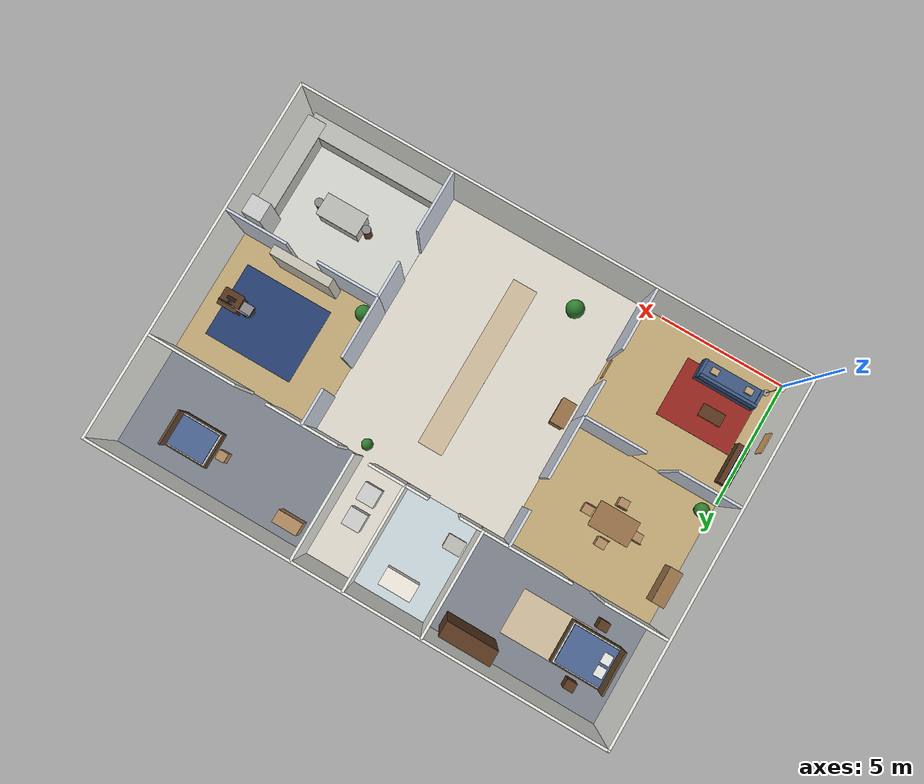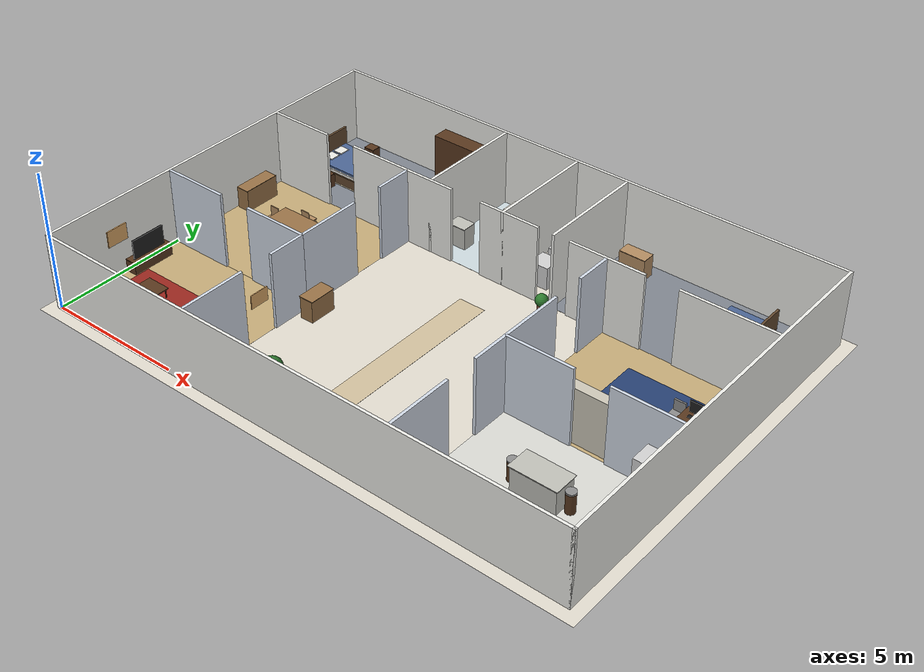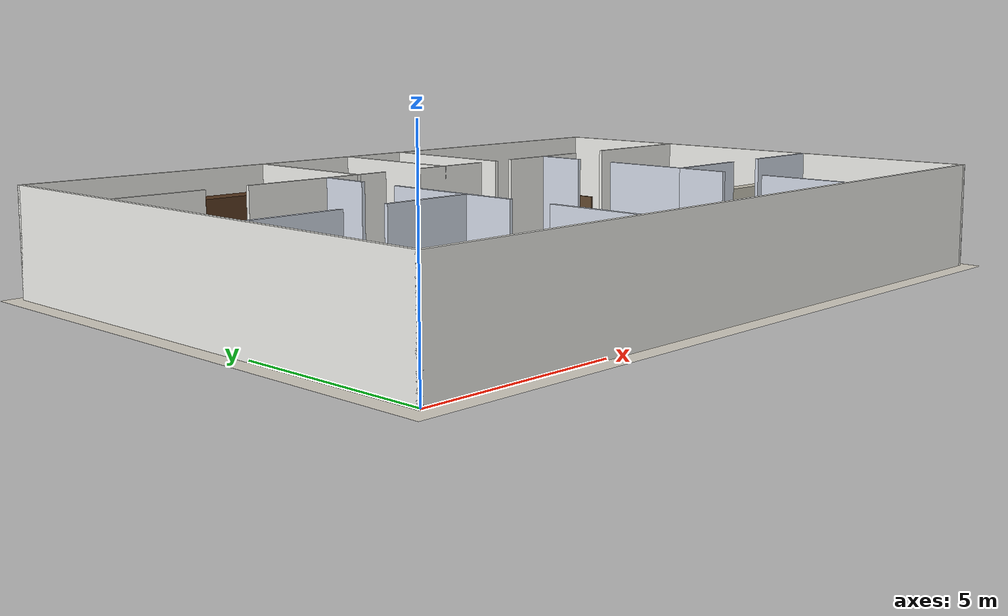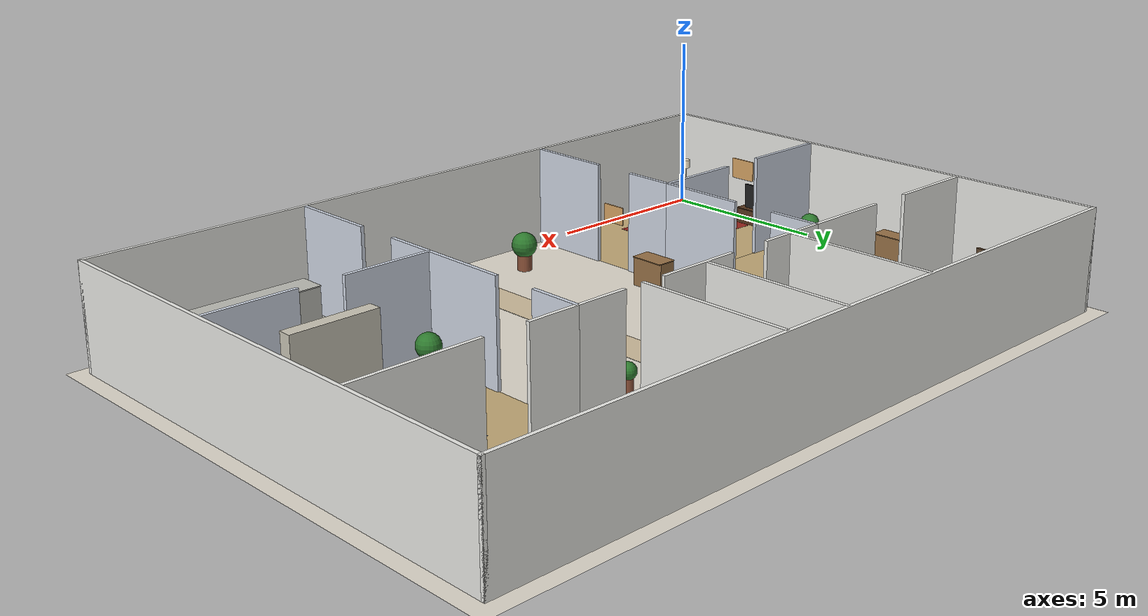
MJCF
<mujoco model="nova_house">
  <compiler angle="radian" autolimits="true"/>
  <!-- Scene-only: no robot body. Robot is loaded separately by MuJoCoEngine. -->

  <option cone="elliptic" impratio="100"/>

  <statistic center="10 7 0.5" extent="12"/>

  <visual>
    <headlight diffuse="0.5 0.5 0.5" ambient="0.4 0.4 0.4" specular="0 0 0"/>
    <rgba haze="0.15 0.25 0.35 1"/>
    <global azimuth="-120" elevation="-25"/>
    <quality shadowsize="4096"/>
  </visual>

  <asset>
    <texture type="skybox" builtin="gradient" rgb1="0.88 0.90 0.95" rgb2="0.65 0.70 0.80"
             width="512" height="3072"/>

    <!-- Floor textures -->
    <texture type="2d" name="wood_tex" builtin="checker"
             rgb1="0.82 0.72 0.52" rgb2="0.72 0.62 0.42" width="200" height="200"/>
    <texture type="2d" name="tile_tex" builtin="checker"
             rgb1="0.90 0.90 0.88" rgb2="0.80 0.80 0.78" width="150" height="150"/>
    <texture type="2d" name="carpet_tex" builtin="flat"
             rgb1="0.50 0.52 0.56" rgb2="0.45 0.47 0.51" width="100" height="100"/>
    <texture type="2d" name="marble_tex" builtin="checker"
             rgb1="0.92 0.90 0.85" rgb2="0.85 0.82 0.77" width="120" height="120"/>
    <texture type="2d" name="bath_tex" builtin="checker"
             rgb1="0.85 0.90 0.92" rgb2="0.75 0.80 0.82" width="80" height="80"/>

    <material name="wood_mat" texture="wood_tex" texuniform="true" texrepeat="6 6" reflectance="0.12"/>
    <material name="tile_mat" texture="tile_tex" texuniform="true" texrepeat="8 8" reflectance="0.25"/>
    <material name="carpet_mat" texture="carpet_tex" texuniform="true" texrepeat="3 3" reflectance="0.02"/>
    <material name="marble_mat" texture="marble_tex" texuniform="true" texrepeat="10 12" reflectance="0.2"/>
    <material name="bath_tile" texture="bath_tex" texuniform="true" texrepeat="6 6" reflectance="0.3"/>

    <material name="wall_mat" rgba="0.93 0.93 0.91 1" reflectance="0.04"/>
    <material name="accent_wall" rgba="0.82 0.85 0.90 1" reflectance="0.04"/>

    <!-- Furniture -->
    <material name="dark_wood" rgba="0.35 0.22 0.12 1" reflectance="0.12"/>
    <material name="light_wood" rgba="0.70 0.55 0.38 1" reflectance="0.10"/>
    <material name="oak_mat" rgba="0.60 0.45 0.28 1" reflectance="0.10"/>
    <material name="sofa_blue" rgba="0.25 0.35 0.52 1" reflectance="0.04"/>
    <material name="sofa_grey" rgba="0.55 0.55 0.55 1" reflectance="0.04"/>
    <material name="cushion_mat" rgba="0.75 0.65 0.50 1" reflectance="0.03"/>
    <material name="bed_white" rgba="0.92 0.92 0.90 1" reflectance="0.03"/>
    <material name="bed_blue" rgba="0.30 0.40 0.58 1" reflectance="0.03"/>
    <material name="bed_frame" rgba="0.38 0.28 0.18 1" reflectance="0.08"/>
    <material name="counter_mat" rgba="0.75 0.75 0.72 1" reflectance="0.25"/>
    <material name="steel_mat" rgba="0.82 0.82 0.82 1" reflectance="0.40"/>
    <material name="black_mat" rgba="0.12 0.12 0.12 1" reflectance="0.50"/>
    <material name="shelf_mat" rgba="0.80 0.78 0.72 1" reflectance="0.10"/>
    <material name="ceramic_mat" rgba="0.95 0.93 0.88 1" reflectance="0.20"/>
    <material name="plant_pot" rgba="0.55 0.32 0.22 1" reflectance="0.05"/>
    <material name="plant_leaf" rgba="0.18 0.48 0.18 1" reflectance="0.03"/>
    <material name="rug_red" rgba="0.60 0.15 0.12 1" reflectance="0.02"/>
    <material name="rug_blue" rgba="0.15 0.25 0.45 1" reflectance="0.02"/>
    <material name="rug_beige" rgba="0.82 0.75 0.62 1" reflectance="0.02"/>
    <material name="lamp_shade" rgba="0.95 0.90 0.80 1" reflectance="0.01"/>
    <material name="lamp_base" rgba="0.70 0.65 0.55 1" reflectance="0.15"/>
    <material name="painting_mat" rgba="0.85 0.65 0.40 1" reflectance="0.05"/>
  </asset>

  <worldbody>
    <!-- ==================== LIGHTING ==================== -->
    <!-- Room lights (one per room) -->
    <light name="light_living" pos="3 2.5 2.7" dir="0 0 -1" diffuse="0.55 0.50 0.42" cutoff="65"/>
    <light name="light_dining" pos="3 7.5 2.7" dir="0 0 -1" diffuse="0.55 0.50 0.42" cutoff="65"/>
    <light name="light_kitchen" pos="17 2.5 2.7" dir="0 0 -1" diffuse="0.60 0.58 0.52" cutoff="65"/>
    <light name="light_study" pos="17 7.5 2.7" dir="0 0 -1" diffuse="0.55 0.52 0.45" cutoff="65"/>
    <light name="light_hall_a" pos="10 3 2.7" dir="0 0 -1" diffuse="0.50 0.48 0.42" cutoff="55"/>
    <light name="light_hall_b" pos="10 7 2.7" dir="0 0 -1" diffuse="0.50 0.48 0.42" cutoff="55"/>
    <light name="light_master" pos="3.5 12 2.7" dir="0 0 -1" diffuse="0.50 0.45 0.38" cutoff="60"/>
    <light name="light_guest" pos="16 12 2.7" dir="0 0 -1" diffuse="0.50 0.45 0.38" cutoff="60"/>
    <light name="light_bath" pos="8.5 12 2.7" dir="0 0 -1" diffuse="0.55 0.55 0.55" cutoff="55"/>
    <!-- Global ambient fill -->
    <light name="sun" pos="10 7 4" dir="0 0 -1" directional="true" diffuse="0.25 0.25 0.25"/>

    <!-- ==================== FLOORS ==================== -->
    <!-- Floor: plane for physics contact (correct collision) + box for mj_ray detection -->
    <geom name="floor" type="plane" pos="10 7 0" size="10.5 7.5 0.05" material="marble_mat"/>
    <geom name="floor_raycast" type="box" pos="10 7 -0.02" size="10.5 7.5 0.01"
          contype="0" conaffinity="0" group="3" rgba="0 0 0 0"/>
    <!-- Ceiling: needed for downward-facing lidar rays -->
    <geom name="ceiling" type="box" pos="10 7 2.85" size="10.5 7.5 0.05" material="wall_mat"
          contype="0" conaffinity="0" group="3"/>

    <!-- Per-room floor overlays (visual only) -->
    <geom name="f_living" type="box" pos="3 2.5 0.001" size="3 2.5 0.001" material="wood_mat" contype="0" conaffinity="0"/>
    <geom name="f_dining" type="box" pos="3 7.5 0.001" size="3 2.5 0.001" material="wood_mat" contype="0" conaffinity="0"/>
    <geom name="f_kitchen" type="box" pos="17 2.5 0.001" size="3 2.5 0.001" material="tile_mat" contype="0" conaffinity="0"/>
    <geom name="f_study" type="box" pos="17 7.5 0.001" size="3 2.5 0.001" material="wood_mat" contype="0" conaffinity="0"/>
    <geom name="f_master" type="box" pos="3.5 12 0.001" size="3.5 2 0.001" material="carpet_mat" contype="0" conaffinity="0"/>
    <geom name="f_guest" type="box" pos="16 12 0.001" size="4 2 0.001" material="carpet_mat" contype="0" conaffinity="0"/>
    <geom name="f_bath" type="box" pos="8.5 12 0.001" size="1.5 2 0.001" material="bath_tile" contype="0" conaffinity="0"/>

    <!-- ==================== EXTERIOR WALLS ==================== -->
    <!-- height=2.8m, thickness=0.1m -->
    <geom name="ew_south" type="box" pos="10 -0.05 1.4" size="10.1 0.05 1.4" material="wall_mat"/>
    <geom name="ew_north" type="box" pos="10 14.05 1.4" size="10.1 0.05 1.4" material="wall_mat"/>
    <geom name="ew_west" type="box" pos="-0.05 7 1.4" size="0.05 7.1 1.4" material="wall_mat"/>
    <geom name="ew_east" type="box" pos="20.05 7 1.4" size="0.05 7.1 1.4" material="wall_mat"/>

    <!-- ==================== INTERIOR WALLS ==================== -->

    <!-- LEFT WALL (x=6): Living/Dining ↔ Central Hall -->
    <!-- y=0 to y=2.4 -->
    <geom name="iw_l1" type="box" pos="6 1.2 1.4" size="0.05 1.2 1.4" material="accent_wall"/>
    <!-- y=3.6 to y=5 (gap at 2.4..3.6 = door to Living) -->
    <geom name="iw_l2" type="box" pos="6 4.3 1.4" size="0.05 0.7 1.4" material="accent_wall"/>
    <!-- y=5 to y=7.4 -->
    <geom name="iw_l3" type="box" pos="6 6.2 1.4" size="0.05 1.2 1.4" material="accent_wall"/>
    <!-- y=8.6 to y=10 (gap at 7.4..8.6 = door to Dining) -->
    <geom name="iw_l4" type="box" pos="6 9.3 1.4" size="0.05 0.7 1.4" material="accent_wall"/>

    <!-- RIGHT WALL (x=14): Central Hall ↔ Kitchen/Study -->
    <!-- y=0 to y=2.4 -->
    <geom name="iw_r1" type="box" pos="14 1.2 1.4" size="0.05 1.2 1.4" material="accent_wall"/>
    <!-- y=3.6 to y=5 (gap at 2.4..3.6 = door to Kitchen) -->
    <geom name="iw_r2" type="box" pos="14 4.3 1.4" size="0.05 0.7 1.4" material="accent_wall"/>
    <!-- y=5 to y=7.4 -->
    <geom name="iw_r3" type="box" pos="14 6.2 1.4" size="0.05 1.2 1.4" material="accent_wall"/>
    <!-- y=8.6 to y=10 (gap at 7.4..8.6 = door to Study) -->
    <geom name="iw_r4" type="box" pos="14 9.3 1.4" size="0.05 0.7 1.4" material="accent_wall"/>

    <!-- LIVING/DINING DIVIDER (y=5, x=0..6): door at x=2.4..3.6 -->
    <geom name="iw_ld1" type="box" pos="1.2 5 1.4" size="1.2 0.05 1.4" material="accent_wall"/>
    <geom name="iw_ld2" type="box" pos="4.8 5 1.4" size="1.2 0.05 1.4" material="accent_wall"/>

    <!-- KITCHEN/STUDY DIVIDER (y=5, x=14..20): door at x=16.4..17.6 -->
    <geom name="iw_ks1" type="box" pos="15.2 5 1.4" size="1.2 0.05 1.4" material="accent_wall"/>
    <geom name="iw_ks2" type="box" pos="18.8 5 1.4" size="1.2 0.05 1.4" material="accent_wall"/>

    <!-- BEDROOM WALL (y=10, full width): doors at multiple points -->
    <!-- x=0 to x=2.4 -->
    <geom name="iw_b1" type="box" pos="1.2 10 1.4" size="1.2 0.05 1.4" material="wall_mat"/>
    <!-- x=3.6 to x=6 (gap = door to Master BR) -->
    <geom name="iw_b2" type="box" pos="4.8 10 1.4" size="1.2 0.05 1.4" material="wall_mat"/>
    <!-- x=6 to x=7.9 -->
    <geom name="iw_b3" type="box" pos="6.95 10 1.4" size="0.95 0.05 1.4" material="wall_mat"/>
    <!-- x=9.1 to x=11.4 (gap at 7.9..9.1 = door to Bathroom) -->
    <geom name="iw_b4" type="box" pos="10.25 10 1.4" size="1.15 0.05 1.4" material="wall_mat"/>
    <!-- x=12.6 to x=14 (gap at 11.4..12.6 = door to Guest BR) -->
    <geom name="iw_b5" type="box" pos="13.3 10 1.4" size="0.7 0.05 1.4" material="wall_mat"/>
    <!-- x=14 to x=15.4 -->
    <geom name="iw_b6" type="box" pos="14.7 10 1.4" size="0.7 0.05 1.4" material="wall_mat"/>
    <!-- x=16.6 to x=20 (gap at 15.4..16.6 = another door to Guest) -->
    <geom name="iw_b7" type="box" pos="18.3 10 1.4" size="1.7 0.05 1.4" material="wall_mat"/>

    <!-- BATHROOM walls (x=7, x=10, y=10..14) -->
    <geom name="iw_bath_w" type="box" pos="7 12 1.4" size="0.05 2.05 1.4" material="wall_mat"/>
    <geom name="iw_bath_e" type="box" pos="10 12 1.4" size="0.05 2.05 1.4" material="wall_mat"/>

    <!-- LAUNDRY nook (x=10..12, y=10..14) — open niche, just east wall -->
    <geom name="iw_laund_e" type="box" pos="12 12 1.4" size="0.05 2.05 1.4" material="wall_mat"/>

    <!-- ==================== LIVING ROOM (x=0..6, y=0..5) ==================== -->

    <!-- L-sofa against south-west -->
    <body name="sofa_main" pos="1.8 1.0 0">
      <geom type="box" pos="0 0 0.18" size="1.2 0.38 0.18" material="sofa_blue"/>
      <geom type="box" pos="0 -0.08 0.42" size="1.15 0.30 0.06" material="sofa_blue"/>
      <geom type="box" pos="0 0.30 0.48" size="1.15 0.06 0.28" material="sofa_blue"/>
      <geom type="box" pos="-1.15 0 0.38" size="0.05 0.38 0.16" material="sofa_blue"/>
      <geom type="box" pos="1.15 0 0.38" size="0.05 0.38 0.16" material="sofa_blue"/>
      <!-- Throw pillows -->
      <geom type="box" pos="-0.7 -0.1 0.52" size="0.15 0.12 0.08" material="cushion_mat"/>
      <geom type="box" pos="0.7 -0.1 0.52" size="0.15 0.12 0.08" material="cushion_mat"/>
    </body>

    <!-- Coffee table -->
    <body name="coffee_tbl" pos="1.8 2.3 0">
      <geom type="cylinder" pos="-0.35 -0.2 0.18" size="0.02 0.18" material="dark_wood"/>
      <geom type="cylinder" pos="0.35 -0.2 0.18" size="0.02 0.18" material="dark_wood"/>
      <geom type="cylinder" pos="-0.35 0.2 0.18" size="0.02 0.18" material="dark_wood"/>
      <geom type="cylinder" pos="0.35 0.2 0.18" size="0.02 0.18" material="dark_wood"/>
      <geom type="box" pos="0 0 0.37" size="0.45 0.25 0.02" material="dark_wood"/>
    </body>

    <!-- TV + media console against west wall -->
    <body name="tv_console" pos="0.25 3.5 0">
      <geom type="box" pos="0 0 0.22" size="0.22 0.8 0.22" material="dark_wood"/>
      <geom type="box" pos="0 0 0.45" size="0.22 0.8 0.01" material="dark_wood"/>
      <geom name="tv" type="box" pos="0.02 0 0.78" size="0.025 0.65 0.4" material="black_mat"/>
    </body>

    <!-- Floor lamp -->
    <body name="lamp_living" pos="0.4 0.5 0">
      <geom type="cylinder" pos="0 0 0.02" size="0.12 0.02" material="lamp_base"/>
      <geom type="cylinder" pos="0 0 0.7" size="0.015 0.68" material="lamp_base"/>
      <geom type="cylinder" pos="0 0 1.38" size="0.12 0.12" material="lamp_shade" contype="0" conaffinity="0"/>
    </body>

    <!-- Rug -->
    <geom name="rug_living" type="box" pos="2.0 2.0 0.004" size="1.5 1.2 0.004"
          material="rug_red" contype="0" conaffinity="0"/>

    <!-- Wall art -->
    <geom name="art_living" type="box" pos="0.02 2.5 1.5" size="0.02 0.4 0.3"
          material="painting_mat" contype="0" conaffinity="0"/>

    <!-- ==================== DINING ROOM (x=0..6, y=5..10) ==================== -->

    <!-- Dining table (large, 8-seater) -->
    <body name="dining_table" pos="3 7.5 0">
      <geom type="cylinder" pos="-0.65 -0.4 0.36" size="0.035 0.36" material="oak_mat"/>
      <geom type="cylinder" pos="0.65 -0.4 0.36" size="0.035 0.36" material="oak_mat"/>
      <geom type="cylinder" pos="-0.65 0.4 0.36" size="0.035 0.36" material="oak_mat"/>
      <geom type="cylinder" pos="0.65 0.4 0.36" size="0.035 0.36" material="oak_mat"/>
      <geom type="box" pos="0 0 0.73" size="0.8 0.5 0.025" material="oak_mat"/>
    </body>

    <!-- 4 dining chairs -->
    <body name="dchair1" pos="2.0 7.5 0">
      <geom type="box" pos="0 0 0.23" size="0.17 0.17 0.23" material="light_wood" contype="0" conaffinity="0"/>
      <geom type="box" pos="0 0 0.46" size="0.19 0.19 0.015" material="light_wood"/>
      <geom type="box" pos="0 0.17 0.66" size="0.17 0.015 0.19" material="light_wood"/>
    </body>
    <body name="dchair2" pos="4.0 7.5 0">
      <geom type="box" pos="0 0 0.23" size="0.17 0.17 0.23" material="light_wood" contype="0" conaffinity="0"/>
      <geom type="box" pos="0 0 0.46" size="0.19 0.19 0.015" material="light_wood"/>
      <geom type="box" pos="0 -0.17 0.66" size="0.17 0.015 0.19" material="light_wood"/>
    </body>
    <body name="dchair3" pos="3.0 6.7 0">
      <geom type="box" pos="0 0 0.23" size="0.17 0.17 0.23" material="light_wood" contype="0" conaffinity="0"/>
      <geom type="box" pos="0 0 0.46" size="0.19 0.19 0.015" material="light_wood"/>
      <geom type="box" pos="0 0.17 0.66" size="0.17 0.015 0.19" material="light_wood"/>
    </body>
    <body name="dchair4" pos="3.0 8.3 0">
      <geom type="box" pos="0 0 0.23" size="0.17 0.17 0.23" material="light_wood" contype="0" conaffinity="0"/>
      <geom type="box" pos="0 0 0.46" size="0.19 0.19 0.015" material="light_wood"/>
      <geom type="box" pos="0 -0.17 0.66" size="0.17 0.015 0.19" material="light_wood"/>
    </body>

    <!-- Sideboard / buffet against west wall -->
    <body name="sideboard" pos="0.3 8.5 0">
      <geom type="box" pos="0 0 0.4" size="0.25 0.7 0.4" material="oak_mat"/>
      <geom type="box" pos="0 0 0.81" size="0.25 0.7 0.01" material="oak_mat"/>
    </body>

    <!-- Plant in dining corner -->
    <body name="plant_dining" pos="0.5 5.5 0">
      <geom type="cylinder" pos="0 0 0.22" size="0.15 0.22" material="plant_pot"/>
      <geom type="sphere" pos="0 0 0.58" size="0.28" material="plant_leaf" contype="0" conaffinity="0"/>
    </body>

    <!-- ==================== KITCHEN (x=14..20, y=0..5) ==================== -->

    <!-- L-shaped counter (along east + south walls) -->
    <body name="counter_east" pos="19.6 2.5 0">
      <geom type="box" pos="0 0 0.44" size="0.35 2.3 0.44" material="counter_mat"/>
      <geom type="box" pos="0 0 0.90" size="0.38 2.3 0.015" material="counter_mat"/>
    </body>
    <body name="counter_south" pos="17 0.4 0">
      <geom type="box" pos="0 0 0.44" size="2.8 0.35 0.44" material="counter_mat"/>
      <geom type="box" pos="0 0 0.90" size="2.8 0.38 0.015" material="counter_mat"/>
    </body>

    <!-- Kitchen island -->
    <body name="island" pos="17 2.8 0">
      <geom type="box" pos="0 0 0.44" size="0.8 0.4 0.44" material="counter_mat"/>
      <geom type="box" pos="0 0 0.90" size="0.85 0.45 0.015" material="counter_mat"/>
    </body>

    <!-- Fridge (tall, against east wall near north) -->
    <body name="fridge" pos="19.5 4.3 0">
      <geom type="box" pos="0 0 0.9" size="0.38 0.38 0.9" material="steel_mat"/>
    </body>

    <!-- Bar stools at island -->
    <body name="stool1" pos="16.0 2.8 0">
      <geom type="cylinder" pos="0 0 0.35" size="0.16 0.35" material="dark_wood"/>
      <geom type="cylinder" pos="0 0 0.73" size="0.17 0.03" material="sofa_grey"/>
    </body>
    <body name="stool2" pos="18.0 2.8 0">
      <geom type="cylinder" pos="0 0 0.35" size="0.16 0.35" material="dark_wood"/>
      <geom type="cylinder" pos="0 0 0.73" size="0.17 0.03" material="sofa_grey"/>
    </body>

    <!-- ==================== STUDY (x=14..20, y=5..10) ==================== -->

    <!-- L-desk against east wall -->
    <body name="desk" pos="19.2 7.5 0">
      <geom type="box" pos="0 0 0.36" size="0.05 0.3 0.36" material="dark_wood"/>
      <geom type="box" pos="-0.6 0 0.36" size="0.05 0.3 0.36" material="dark_wood"/>
      <geom type="box" pos="-0.3 0 0.73" size="0.4 0.35 0.02" material="dark_wood"/>
      <!-- Monitor -->
      <geom type="box" pos="-0.3 0.18 0.95" size="0.28 0.02 0.20" material="black_mat"/>
      <geom type="box" pos="-0.3 0.12 0.78" size="0.06 0.06 0.04" material="black_mat"/>
      <!-- Keyboard -->
      <geom type="box" pos="-0.3 -0.05 0.76" size="0.18 0.06 0.01" material="black_mat"
            contype="0" conaffinity="0"/>
    </body>

    <!-- Desk chair (on wheels) -->
    <body name="desk_chair" pos="18.3 7.5 0">
      <geom type="cylinder" pos="0 0 0.22" size="0.25 0.02" material="black_mat"/>
      <geom type="cylinder" pos="0 0 0.35" size="0.04 0.12" material="black_mat"/>
      <geom type="box" pos="0 0 0.50" size="0.22 0.22 0.03" material="sofa_grey"/>
      <geom type="box" pos="0 0.20 0.72" size="0.20 0.03 0.20" material="sofa_grey"/>
    </body>

    <!-- Large bookshelf (against south wall of study) -->
    <body name="bookshelf" pos="17 5.3 0">
      <geom type="box" pos="0 0 1.0" size="1.2 0.18 1.0" material="shelf_mat"/>
      <geom type="box" pos="0 0 0.45" size="1.18 0.16 0.01" material="shelf_mat"/>
      <geom type="box" pos="0 0 0.90" size="1.18 0.16 0.01" material="shelf_mat"/>
      <geom type="box" pos="0 0 1.35" size="1.18 0.16 0.01" material="shelf_mat"/>
      <geom type="box" pos="0 0 1.80" size="1.18 0.16 0.01" material="shelf_mat"/>
    </body>

    <!-- Study rug -->
    <geom name="rug_study" type="box" pos="17.5 7.5 0.004" size="1.8 1.5 0.004"
          material="rug_blue" contype="0" conaffinity="0"/>

    <!-- Plant in study -->
    <body name="plant_study" pos="14.5 5.5 0">
      <geom type="cylinder" pos="0 0 0.3" size="0.18 0.3" material="plant_pot"/>
      <geom type="sphere" pos="0 0 0.72" size="0.32" material="plant_leaf" contype="0" conaffinity="0"/>
    </body>

    <!-- ==================== MASTER BEDROOM (x=0..7, y=10..14) ==================== -->

    <!-- Bed (king size, against west wall) -->
    <body name="master_bed" pos="1.5 12 0">
      <geom type="box" pos="0 0 0.18" size="1.0 0.85 0.18" material="bed_frame"/>
      <geom type="box" pos="0 0 0.40" size="0.95 0.80 0.06" material="bed_white"/>
      <geom type="box" pos="0 0 0.50" size="0.90 0.75 0.04" material="bed_blue"/>
      <geom type="box" pos="-0.65 -0.25 0.50" size="0.18 0.20 0.08" material="bed_white"/>
      <geom type="box" pos="-0.65 0.25 0.50" size="0.18 0.20 0.08" material="bed_white"/>
      <!-- Headboard -->
      <geom type="box" pos="-0.96 0 0.7" size="0.04 0.85 0.48" material="bed_frame"/>
    </body>

    <!-- Nightstands -->
    <body name="nightstand_l" pos="1.5 10.8 0">
      <geom type="box" pos="0 0 0.25" size="0.2 0.18 0.25" material="dark_wood"/>
      <geom type="box" pos="0 0 0.51" size="0.2 0.18 0.01" material="dark_wood"/>
    </body>
    <body name="nightstand_r" pos="1.5 13.2 0">
      <geom type="box" pos="0 0 0.25" size="0.2 0.18 0.25" material="dark_wood"/>
      <geom type="box" pos="0 0 0.51" size="0.2 0.18 0.01" material="dark_wood"/>
    </body>

    <!-- Wardrobe -->
    <body name="wardrobe" pos="5.5 13.5 0">
      <geom type="box" pos="0 0 1.05" size="1.0 0.3 1.05" material="dark_wood"/>
    </body>

    <!-- Bedroom rug -->
    <geom name="rug_master" type="box" pos="3 12 0.004" size="1.5 0.9 0.004"
          material="rug_beige" contype="0" conaffinity="0"/>

    <!-- ==================== GUEST BEDROOM (x=12..20, y=10..14) ==================== -->

    <!-- Bed -->
    <body name="guest_bed" pos="17.5 12.5 0">
      <geom type="box" pos="0 0 0.18" size="0.85 0.7 0.18" material="bed_frame"/>
      <geom type="box" pos="0 0 0.40" size="0.80 0.65 0.06" material="bed_white"/>
      <geom type="box" pos="0 0 0.50" size="0.75 0.60 0.04" material="bed_blue"/>
      <geom type="box" pos="0.81 0 0.65" size="0.04 0.70 0.42" material="bed_frame"/>
    </body>

    <!-- Guest nightstand -->
    <body name="guest_nightstand" pos="16.3 12.5 0">
      <geom type="box" pos="0 0 0.25" size="0.18 0.18 0.25" material="light_wood"/>
      <geom type="box" pos="0 0 0.51" size="0.18 0.18 0.01" material="light_wood"/>
    </body>

    <!-- Guest dresser -->
    <body name="dresser" pos="13 13.3 0">
      <geom type="box" pos="0 0 0.4" size="0.5 0.25 0.4" material="light_wood"/>
      <geom type="box" pos="0 0 0.81" size="0.5 0.25 0.01" material="light_wood"/>
    </body>

    <!-- ==================== BATHROOM (x=7..10, y=10..14) ==================== -->

    <!-- Bathtub (against north wall) -->
    <body name="bathtub" pos="8.5 13.2 0">
      <geom type="box" pos="0 0 0.30" size="0.65 0.35 0.30" material="ceramic_mat"/>
    </body>

    <!-- Sink vanity -->
    <body name="vanity" pos="7.5 11 0">
      <geom type="box" pos="0 0 0.40" size="0.35 0.25 0.40" material="counter_mat"/>
      <geom type="box" pos="0 0 0.81" size="0.35 0.28 0.01" material="counter_mat"/>
    </body>

    <!-- ==================== LAUNDRY NOOK (x=10..12, y=10..14) ==================== -->

    <!-- Washer -->
    <body name="washer" pos="11 11 0">
      <geom type="box" pos="0 0 0.42" size="0.35 0.35 0.42" material="steel_mat"/>
    </body>
    <!-- Dryer -->
    <body name="dryer" pos="11 12 0">
      <geom type="box" pos="0 0 0.42" size="0.35 0.35 0.42" material="steel_mat"/>
    </body>

    <!-- ==================== CENTRAL HALLWAY DECOR ==================== -->

    <!-- Console table against left wall of hallway -->
    <body name="console_table" pos="6.5 5 0">
      <geom type="box" pos="0 0 0.40" size="0.25 0.5 0.40" material="oak_mat"/>
      <geom type="box" pos="0 0 0.81" size="0.28 0.5 0.01" material="oak_mat"/>
    </body>

    <!-- Large potted plant near entry -->
    <body name="plant_entry" pos="8 1.5 0">
      <geom type="cylinder" pos="0 0 0.28" size="0.2 0.28" material="plant_pot"/>
      <geom type="sphere" pos="0 0 0.72" size="0.35" material="plant_leaf" contype="0" conaffinity="0"/>
    </body>

    <!-- Hallway runner rug -->
    <geom name="rug_hall" type="box" pos="10 5 0.004" size="0.5 3.5 0.004"
          material="rug_beige" contype="0" conaffinity="0"/>

    <!-- Hall plant near bedroom doors -->
    <body name="plant_hall" pos="12 9.5 0">
      <geom type="cylinder" pos="0 0 0.22" size="0.14 0.22" material="plant_pot"/>
      <geom type="sphere" pos="0 0 0.55" size="0.22" material="plant_leaf" contype="0" conaffinity="0"/>
    </body>

    <!-- Wall art in hallway -->
    <geom name="art_hall1" type="box" pos="6.02 3 1.5" size="0.015 0.35 0.25"
          material="painting_mat" contype="0" conaffinity="0"/>
    <geom name="art_hall2" type="box" pos="13.98 6.5 1.5" size="0.015 0.4 0.3"
          material="painting_mat" contype="0" conaffinity="0"/>

  </worldbody>
</mujoco>
